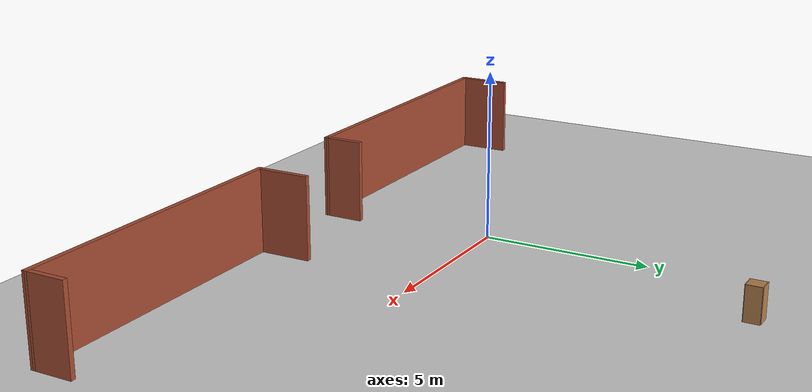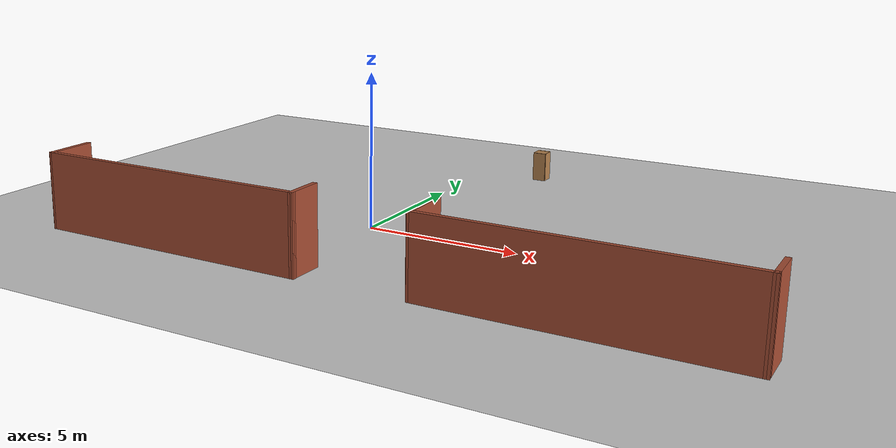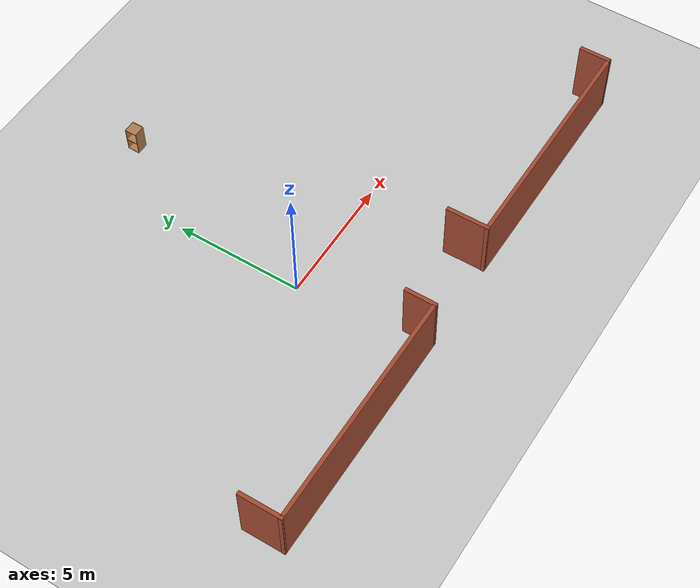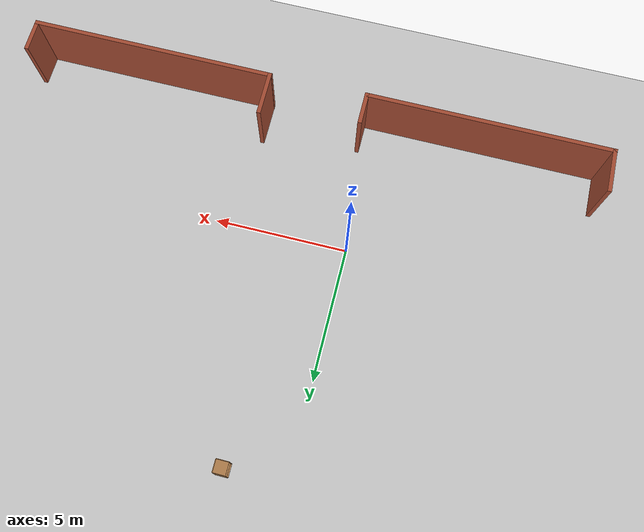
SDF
<sdf version="1.7">
 <world name="default">
  <light name="sun" type="directional">
   <pose>0 0 10 0 -0 0</pose>
   <diffuse>0.8 0.8 0.8 1</diffuse>
   <specular>0.2 0.2 0.2 1</specular>
   <attenuation>
    <range>1000</range>
    <constant>0.9</constant>
    <linear>0.01</linear>
    <quadratic>0.001</quadratic>
   </attenuation>
   <direction>-0.5 0.1 -0.9</direction>
   <spot><inner_angle>0</inner_angle><outer_angle>0</outer_angle><falloff>0</falloff></spot>
  </light>
  <model name="ground_plane">
   <static>1</static>
   <link name="link">
    <collision name="collision">
     <geometry><plane><normal>0 0 1</normal><size>100 100</size></plane></geometry>
     <surface>
      <contact><collide_bitmask>65535</collide_bitmask></contact>
      <friction><ode><mu>100</mu><mu2>50</mu2></ode></friction>
     </surface>
    </collision>
    <visual name="visual">
     <cast_shadows>0</cast_shadows>
     <geometry><plane><normal>0 0 1</normal><size>100 100</size></plane></geometry>
     <material>
      <script><uri>file://media/materials/scripts/gazebo.material</uri><name>Gazebo/Grey</name></script>
     </material>
    </visual>
   </link>
  </model>
  <gravity>0 0 -9.8</gravity>
  <magnetic_field>6e-06 2.3e-05 -4.2e-05</magnetic_field>
  <atmosphere type="adiabatic"/>
  <physics type="ode">
   <max_step_size>0.001</max_step_size>
   <real_time_factor>1</real_time_factor>
   <real_time_update_rate>1000</real_time_update_rate>
  </physics>
  <scene><ambient>0.4 0.4 0.4 1</ambient><background>0.7 0.7 0.7 1</background><shadows>1</shadows></scene>
  <audio><device>default</device></audio>
  <spherical_coordinates>
   <surface_model>EARTH_WGS84</surface_model>
   <latitude_deg>0</latitude_deg>
   <longitude_deg>0</longitude_deg>
   <elevation>0</elevation>
   <heading_deg>0</heading_deg>
  </spherical_coordinates>
  <model name="cabinet">
   <static>1</static>
   <link name="cabinet_bottom_plate">
    <inertial>
     <pose>0 0 -1 0 -0 0</pose>
     <inertia><ixx>2.05</ixx><ixy>0</ixy><ixz>0</ixz><iyy>2.05</iyy><iyz>0</iyz><izz>2.05</izz></inertia>
     <mass>25</mass>
    </inertial>
    <collision name="cabinet_bottom_plate_geom">
     <pose>0 0 0.01 0 -0 0</pose>
     <geometry><box><size>0.45 0.45 0.02</size></box></geometry>
    </collision>
    <visual name="cabinet_bottom_plate_geom_visual">
     <pose>0 0 0.01 0 -0 0</pose>
     <geometry><box><size>0.45 0.45 0.02</size></box></geometry>
     <material>
      <script><uri>file://media/materials/scripts/gazebo.material</uri><name>Gazebo/Wood</name></script>
     </material>
    </visual>
    <collision name="cabinet_bottom_plate_geom_cabinet_back_plate">
     <pose>0.235 0 0.51 0 -0 0</pose>
     <geometry><box><size>0.02 0.45 1.02</size></box></geometry>
    </collision>
    <visual name="cabinet_bottom_plate_geom_cabinet_back_plate_visual">
     <pose>0.235 0 0.51 0 -0 0</pose>
     <geometry><box><size>0.02 0.45 1.02</size></box></geometry>
     <material>
      <script><uri>file://media/materials/scripts/gazebo.material</uri><name>Gazebo/Wood</name></script>
     </material>
    </visual>
    <collision name="cabinet_bottom_plate_geom_cabinet_left_plate">
     <pose>0 0.235 0.51 0 -0 0</pose>
     <geometry><box><size>0.45 0.02 1.02</size></box></geometry>
    </collision>
    <visual name="cabinet_bottom_plate_geom_cabinet_left_plate_visual">
     <pose>0 0.235 0.51 0 -0 0</pose>
     <geometry><box><size>0.45 0.02 1.02</size></box></geometry>
     <material>
      <script><uri>file://media/materials/scripts/gazebo.material</uri><name>Gazebo/Wood</name></script>
     </material>
    </visual>
    <collision name="cabinet_bottom_plate_geom_cabinet_middle_plate">
     <pose>0 0 0.51 0 -0 0</pose>
     <geometry><box><size>0.45 0.45 0.02</size></box></geometry>
    </collision>
    <visual name="cabinet_bottom_plate_geom_cabinet_middle_plate_visual">
     <pose>0 0 0.51 0 -0 0</pose>
     <geometry><box><size>0.45 0.45 0.02</size></box></geometry>
     <material>
      <script><uri>file://media/materials/scripts/gazebo.material</uri><name>Gazebo/Wood</name></script>
     </material>
    </visual>
    <collision name="cabinet_bottom_plate_geom_cabinet_right_plate">
     <pose>0 -0.235 0.51 0 -0 0</pose>
     <geometry><box><size>0.45 0.02 1.02</size></box></geometry>
    </collision>
    <visual name="cabinet_bottom_plate_geom_cabinet_right_plate_visual">
     <pose>0 -0.235 0.51 0 -0 0</pose>
     <geometry><box><size>0.45 0.02 1.02</size></box></geometry>
     <material>
      <script><uri>file://media/materials/scripts/gazebo.material</uri><name>Gazebo/Wood</name></script>
     </material>
    </visual>
    <collision name="cabinet_bottom_plate_geom_cabinet_top_plate">
     <pose>0 0 1.01 0 -0 0</pose>
     <geometry><box><size>0.45 0.45 0.02</size></box></geometry>
    </collision>
    <visual name="cabinet_bottom_plate_geom_cabinet_top_plate_visual">
     <pose>0 0 1.01 0 -0 0</pose>
     <geometry><box><size>0.45 0.45 0.02</size></box></geometry>
     <material>
      <script><uri>file://media/materials/scripts/gazebo.material</uri><name>Gazebo/Wood</name></script>
     </material>
    </visual>
   </link>
   <pose>2.21202 8.64414 0 0 -0 0</pose>
  </model>
  <model name="test_world">
   <pose>-3.98699 -2.65191 0 0 -0 0</pose>
   <link name="Wall_0">
    <collision name="Wall_0_Collision">
     <geometry><box><size>1.68096 0.15 2.5</size></box></geometry>
     <pose>0 0 1.25 0 -0 0</pose>
    </collision>
    <visual name="Wall_0_Visual">
     <pose>0 0 1.25 0 -0 0</pose>
     <geometry><box><size>1.68096 0.15 2.5</size></box></geometry>
     <material>
      <script><uri>file://media/materials/scripts/gazebo.material</uri><name>Gazebo/Bricks</name></script>
      <ambient>1 1 1 1</ambient>
     </material>
     <meta><layer>0</layer></meta>
    </visual>
    <pose>-4.54032 -1.79655 0 0 -0 -1.56271</pose>
   </link>
   <link name="Wall_1">
    <collision name="Wall_1_Collision">
     <geometry><box><size>9.23983 0.15 2.5</size></box></geometry>
     <pose>0 0 1.25 0 -0 0</pose>
    </collision>
    <visual name="Wall_1_Visual">
     <pose>0 0 1.25 0 -0 0</pose>
     <geometry><box><size>9.23983 0.15 2.5</size></box></geometry>
     <material>
      <script><uri>file://media/materials/scripts/gazebo.material</uri><name>Gazebo/Bricks</name></script>
      <ambient>1 1 1 1</ambient>
     </material>
     <meta><layer>0</layer></meta>
    </visual>
    <pose>0.002082 -2.5694 0 0 -0 -0.001626</pose>
   </link>
   <link name="Wall_2">
    <collision name="Wall_2_Collision">
     <geometry><box><size>1.25 0.15 2.5</size></box></geometry>
     <pose>0 0 1.25 0 -0 0</pose>
    </collision>
    <visual name="Wall_2_Visual">
     <pose>0 0 1.25 0 -0 0</pose>
     <geometry><box><size>1.25 0.15 2.5</size></box></geometry>
     <material>
      <script><uri>file://media/materials/scripts/gazebo.material</uri><name>Gazebo/Bricks</name></script>
      <ambient>1 1 1 1</ambient>
     </material>
     <meta><layer>0</layer></meta>
    </visual>
    <pose>4.54699 -2.02679 0 0 -0 1.5708</pose>
   </link>
   <static>1</static>
  </model>
  <model name="test_world_0">
   <pose>8.75139 -2.58951 0 0 -0 0</pose>
   <link name="Wall_0">
    <collision name="Wall_0_Collision">
     <geometry><box><size>1.68096 0.15 2.5</size></box></geometry>
     <pose>0 0 1.25 0 -0 0</pose>
    </collision>
    <visual name="Wall_0_Visual">
     <pose>0 0 1.25 0 -0 0</pose>
     <geometry><box><size>1.68096 0.15 2.5</size></box></geometry>
     <material>
      <script><uri>file://media/materials/scripts/gazebo.material</uri><name>Gazebo/Bricks</name></script>
      <ambient>1 1 1 1</ambient>
     </material>
     <meta><layer>0</layer></meta>
    </visual>
    <pose>-4.54032 -1.79655 0 0 -0 -1.56271</pose>
   </link>
   <link name="Wall_1">
    <collision name="Wall_1_Collision">
     <geometry><box><size>9.23983 0.15 2.5</size></box></geometry>
     <pose>0 0 1.25 0 -0 0</pose>
    </collision>
    <visual name="Wall_1_Visual">
     <pose>0 0 1.25 0 -0 0</pose>
     <geometry><box><size>9.23983 0.15 2.5</size></box></geometry>
     <material>
      <script><uri>file://media/materials/scripts/gazebo.material</uri><name>Gazebo/Bricks</name></script>
      <ambient>1 1 1 1</ambient>
     </material>
     <meta><layer>0</layer></meta>
    </visual>
    <pose>0.002082 -2.5694 0 0 -0 -0.001626</pose>
   </link>
   <link name="Wall_2">
    <collision name="Wall_2_Collision">
     <geometry><box><size>1.25 0.15 2.5</size></box></geometry>
     <pose>0 0 1.25 0 -0 0</pose>
    </collision>
    <visual name="Wall_2_Visual">
     <pose>0 0 1.25 0 -0 0</pose>
     <geometry><box><size>1.25 0.15 2.5</size></box></geometry>
     <material>
      <script><uri>file://media/materials/scripts/gazebo.material</uri><name>Gazebo/Bricks</name></script>
      <ambient>1 1 1 1</ambient>
     </material>
     <meta><layer>0</layer></meta>
    </visual>
    <pose>4.54699 -2.02679 0 0 -0 1.5708</pose>
   </link>
   <static>1</static>
  </model>
 </world>
</sdf>
